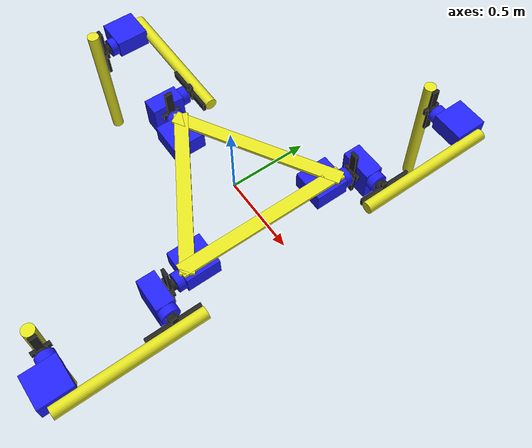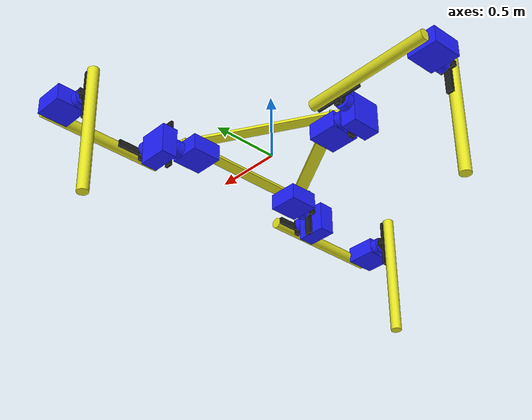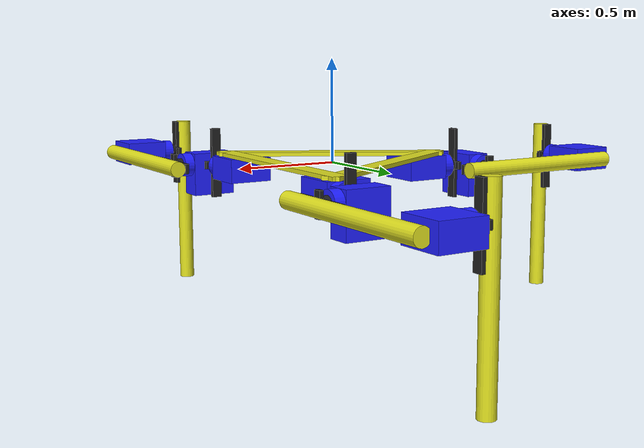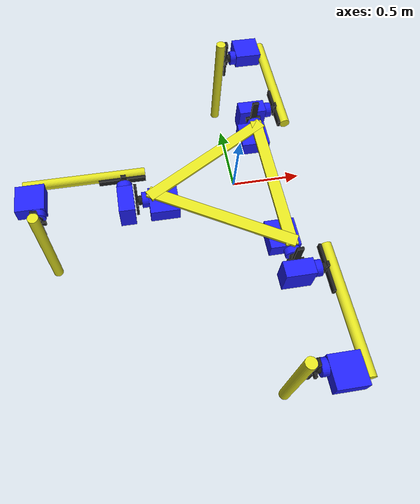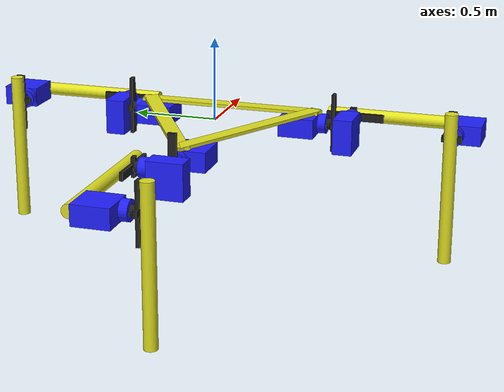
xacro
<?xml version="1.0"?>
<!-- +X is forward, +Y is left, +Z is up -->
<robot xmlns:xacro="http://www.ros.org/wiki/xacro" name="Prototype">

	<material name="white">
		<color rgba="0.875 0.875 0.875 1.0"/>
	</material>
	<material name="yellow">
		<color rgba="0.875 0.875 0.125 1.0"/>
	</material>
	<material name="black">
		<color rgba="0.125 0.125 0.125 1.0"/>
	</material>
	<material name="blue">
		<color rgba="0.125 0.125 1.0 1.0"/>
	</material>

	<xacro:property name="servoL" value="0.22"/>
	<xacro:property name="servoW" value="0.22"/>
	<xacro:property name="servoD" value="0.12"/>
	<xacro:property name="servoL2" value="0.05"/>
	<xacro:property name="hornD" value="0.05"/>
	<xacro:property name="hornY" value="0.06"/>
	<xacro:property name="hornZ" value="0.19"/>
	<xacro:property name="hornZ2" value="0.17"/>
	<xacro:macro name="hxtservojoint" params="name parent child deg:=0 xyz:=${'0 0 0'} rdeg:=0 pdeg:=0 ydeg:=0">
		<!-- unless adjusted, servo aims along +X, servo origin is at the joint, and larger width portion extends toward +Y -->
		<link name="${name}_servo">
			<visual>
				<geometry>
					<box size="${servoL} ${servoW} ${servoD}"/>
				</geometry>
				<origin xyz="${-servoL/2-servoL2-hornD} ${servoW/2-servoD/2} 0"/>
				<material name="blue"/>
			</visual>
			<visual>
				<geometry>
					<cylinder length="${servoL2}" radius="${servoD/2}"/>
				</geometry>
				<origin rpy="0 ${pi/2} 0" xyz="${-servoL2 / 2 - hornD} 0 0"/>
				<material name="blue"/>
			</visual>
		</link>
		<xacro:property name="r" value="${rdeg*pi/180}"/>
		<xacro:property name="p" value="${pdeg*pi/180}"/>
		<xacro:property name="y" value="${ydeg*pi/180}"/>
		<joint name="${name}_servo" type="fixed">
			<parent link="${parent}"/>
			<child link="${name}_servo"/>
			<origin xyz="${xyz}" rpy="${r} ${p} ${y}"/>
		</joint>
		<xacro:property name="c1" value="${cos(r)}"/>
		<xacro:property name="s1" value="${sin(r)}"/>
		<xacro:property name="c2" value="${cos(p)}"/>
		<xacro:property name="s2" value="${sin(p)}"/>
		<xacro:property name="c3" value="${cos(y)}"/>
		<xacro:property name="s3" value="${sin(y)}"/>
		<joint name="${name}" type="revolute">
			<parent link="${parent}"/>
			<child link="${child}"/>
			<axis xyz="${c2} ${c1*s2} ${s1*s2}"/>
			<limit effort="1024.0" lower="${-pi/2}" upper="${pi/2}" velocity="0.5"/>
			<origin xyz="${xyz}" rpy="${r+deg*pi/180} ${p} ${y}"/>
		</joint>
	</xacro:macro>
	<xacro:macro name="hxtservohorn">
		<!-- unless adjusted, servo horn aims along +X, and large portion of horn extends toward +Z -->
		<visual>
			<geometry>
				<cylinder length="0.03" radius="0.035"/>
			</geometry>
			<origin rpy="0 ${pi/2} 0" xyz="${0.015-hornD} 0 0"/>
			<material name="black"/>
		</visual>
		<visual>
			<geometry>
				<box size="0.02 ${hornY*2} 0.04"/>
			</geometry>
			<origin xyz="${0.04-hornD} 0 0"/>
			<material name="black"/>
		</visual>
		<visual>
			<geometry>
				<box size="0.02 0.05 ${hornZ-0.02}"/>
			</geometry>
			<origin xyz="${0.04-hornD} 0 0.105"/>
			<material name="black"/>
		</visual>
		<visual>
			<geometry>
				<box size="0.02 0.05 ${hornZ2-0.02}"/>
			</geometry>
			<origin xyz="${0.04-hornD} 0 -0.095"/>
			<material name="black"/>
		</visual>
	</xacro:macro>

	<xacro:property name="popsicleL" value="1.14"/>
	<xacro:property name="popsicleW" value="0.09"/>
	<xacro:property name="popsicleD" value="0.02"/>
	<link name="base_link">
		<xacro:macro name="bodypopsiclevisual" params="deg">
			<visual>
				<geometry>
					<box size="${popsicleW} ${popsicleL} ${popsicleD}"/>
				</geometry>
				<origin rpy="0 0 ${deg * pi / 180}" xyz="${-cos(deg*pi/180) * tan(30*pi/180) * (popsicleL - popsicleW)/-2} ${-sin(deg*pi/180) * tan(30*pi/180) * (popsicleL - popsicleW)/-2} ${popsicleD/2}"/>
				<material name="yellow"/>
			</visual>
		</xacro:macro>
		<xacro:bodypopsiclevisual deg="0"/>
		<xacro:bodypopsiclevisual deg="120"/>
		<xacro:bodypopsiclevisual deg="-120"/>
	</link>
	<xacro:property name="pencilR" value="0.04"/>
	<xacro:macro name="pencil" params="length offset">
		<visual>
			<geometry>
				<cylinder length="${length}" radius="${pencilR}"/>
			</geometry>
			<origin xyz="${pencilR} 0 ${length/2 - offset}"/>
			<material name="yellow"/>
		</visual>
	</xacro:macro>
	<xacro:macro name="leg" params="name xyz thighL calfL rdeg:=0 pdeg:=0 ydeg:=0 reflect:=1">
		<link name="${name}_hip">
			<xacro:hxtservohorn/>
		</link>
		<xacro:hxtservojoint name="${name}_aiming_hip" parent="base_link" child="${name}_hip" xyz="${xyz}" rdeg="${rdeg + 90 - 90 * reflect}" pdeg="${pdeg}" ydeg="${ydeg}" deg="${90 - 90 * reflect}"/>
		<link name="${name}_thigh">
			<xacro:pencil length="0.94" offset="${hornZ2}"/>
			<xacro:hxtservohorn/>
		</link>
		<xacro:hxtservojoint name="${name}_lifting_hip" parent="${name}_hip" child="${name}_thigh" deg="${90-90*reflect}" xyz="${servoD/2 + 0.01} ${reflect*(-hornD-servoL2-servoL/2)} 0" ydeg="${reflect*-90}" rdeg="-90"/>
		<link name="${name}_calf">
			<xacro:pencil length="0.93" offset="${hornZ2}"/>
			<xacro:hxtservohorn/>
		</link>
		<xacro:hxtservojoint name="${name}_knee" parent="${name}_thigh" child="${name}_calf" deg="${90-90*reflect}" xyz="${-pencilR - servoL - servoL2} 0 ${0.94 - hornZ2 - servoW/2}" ydeg="180" rdeg="90"/>
		<link name="${name}_foot"/>
		<joint name="${name}_joint" type="fixed">
			<parent link="${name}_calf"/>
			<child link="${name}_foot"/>
			<origin xyz="${pencilR} 0 ${0.93 - hornZ2}"/>
		</joint>
	</xacro:macro>
	<xacro:leg name="back" thighL="0.94" calfL="0.93" xyz="-0.75 0 ${-servoD/2}" ydeg="180"/>
	<xacro:leg name="left" thighL="0.91" calfL="0.94" xyz="0.3125 ${popsicleL/2 + hornD + servoL2} ${-servoD/2}" ydeg="90"/>
	<xacro:leg name="right" thighL="0.92" calfL="0.93" xyz="0.3125 ${-popsicleL/2 - hornD - servoL2} ${-servoD/2}" ydeg="-90" reflect="-1"/>
</robot>
